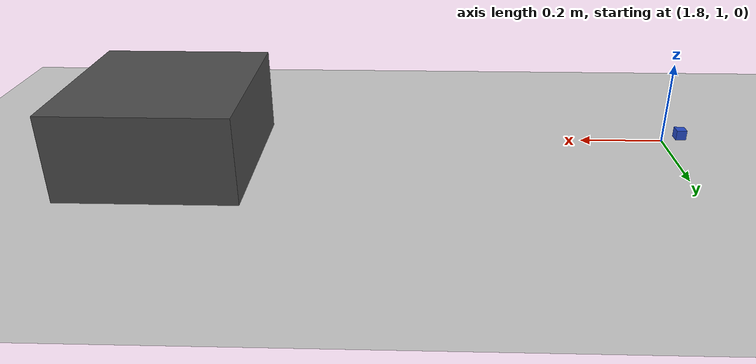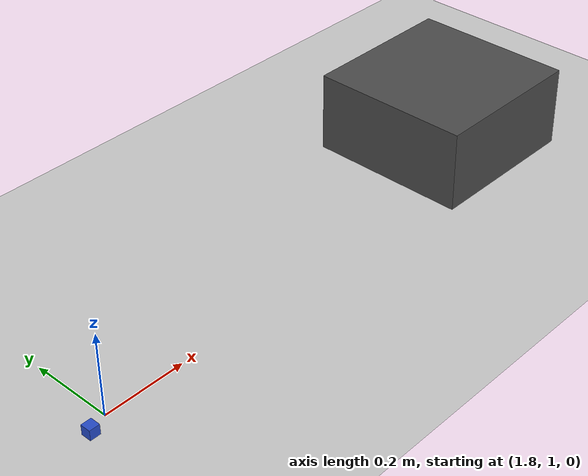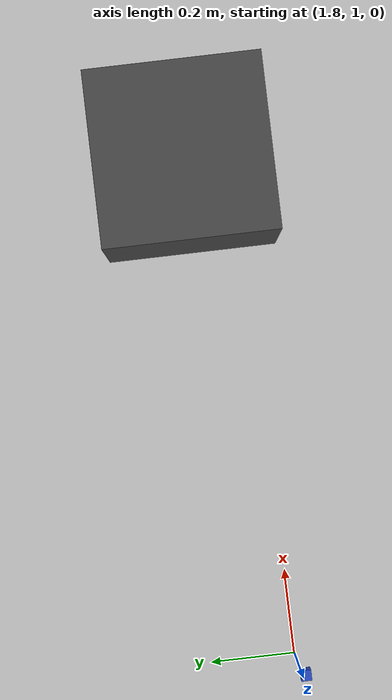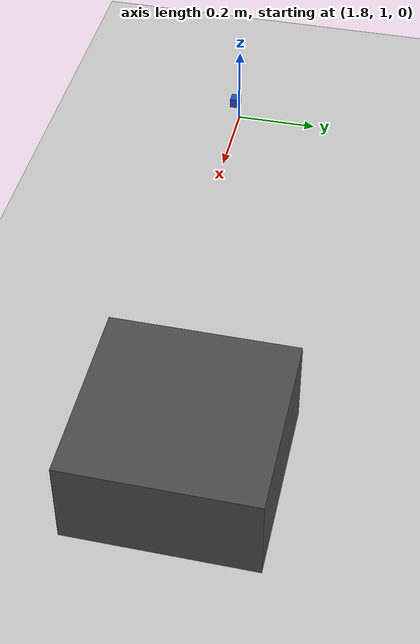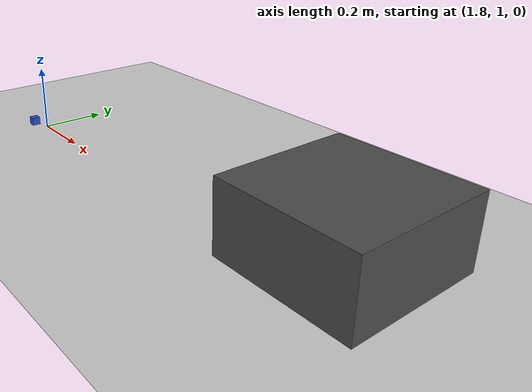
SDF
<?xml version="1.0" ?>
<sdf version="1.6">
  <world name="default">
    <include>
      <uri>model://sun</uri>
    </include>
    <include>
      <uri>model://ground_plane</uri>
    </include>

    <!-- 静态工作台：与 myam_grasping 一致，顶面 z=0.20 m -->
    <model name="grasp_table">
      <static>true</static>
      <pose>2.98 1.13 0.10 0 0 0</pose>
      <link name="table_link">
        <inertial>
          <mass>5.0</mass>
          <inertia>
            <ixx>0.05</ixx>
            <ixy>0</ixy>
            <ixz>0</ixz>
            <iyy>0.05</iyy>
            <iyz>0</iyz>
            <izz>0.05</izz>
          </inertia>
        </inertial>
        <collision name="collision">
          <geometry>
            <box>
              <size>0.40 0.40 0.20</size>
            </box>
          </geometry>
          <surface>
            <contact>
              <ode>
                <kp>3.5e4</kp>
                <kd>8</kd>
              </ode>
            </contact>
            <friction>
              <ode>
                <mu>1.2</mu>
                <mu2>1.2</mu2>
              </ode>
            </friction>
          </surface>
        </collision>
        <visual name="visual">
          <geometry>
            <box>
              <size>0.40 0.40 0.20</size>
            </box>
          </geometry>
          <material>
            <script>
              <name>Gazebo/DarkGrey</name>
              <uri>file://media/materials/scripts/gazebo.material</uri>
            </script>
          </material>
        </visual>
        <sensor name="table_contact_bumper" type="contact">
          <always_on>true</always_on>
          <update_rate>30</update_rate>
          <visualize>false</visualize>
          <contact>
            <collision>collision</collision>
          </contact>
          <plugin name="gazebo_ros_table_bumper" filename="libgazebo_ros_bumper.so">
            <alwaysOn>true</alwaysOn>
            <updateRate>30</updateRate>
            <bumperTopicName>grasp_table_contact_bumper</bumperTopicName>
            <frameName>table_link</frameName>
          </plugin>
        </sensor>
      </link>
    </model>

    <!-- 桌上不再放块（可省略）；放置阶段脚本在桌面上方开爪让块落下 -->

    <!-- 地面 2.5cm 蓝块：在默认生成机前方约 0.7 m 附近 -->
    <model name="grasp_ground_cube">
      <pose>1.75 0.98 0.0125 0 0 0</pose>
      <link name="cube_link">
        <inertial>
          <mass>0.04</mass>
          <inertia>
            <ixx>4.17e-06</ixx>
            <ixy>0</ixy>
            <ixz>0</ixz>
            <iyy>4.17e-06</iyy>
            <iyz>0</iyz>
            <izz>4.17e-06</izz>
          </inertia>
        </inertial>
        <collision name="collision">
          <geometry>
            <box>
              <size>0.025 0.025 0.025</size>
            </box>
          </geometry>
          <surface>
            <contact>
              <ode>
                <kp>5500</kp>
                <kd>48</kd>
                <max_vel>2.5</max_vel>
                <min_depth>0.001</min_depth>
              </ode>
            </contact>
            <friction>
              <ode>
                <mu>0.95</mu>
                <mu2>0.95</mu2>
              </ode>
            </friction>
          </surface>
        </collision>
        <visual name="visual">
          <geometry>
            <box>
              <size>0.025 0.025 0.025</size>
            </box>
          </geometry>
          <material>
            <script>
              <name>Gazebo/Blue</name>
              <uri>file://media/materials/scripts/gazebo.material</uri>
            </script>
          </material>
        </visual>
        <sensor name="ground_cube_bumper" type="contact">
          <always_on>true</always_on>
          <update_rate>30</update_rate>
          <visualize>false</visualize>
          <contact>
            <collision>collision</collision>
          </contact>
          <plugin name="gazebo_ros_ground_cube_bumper" filename="libgazebo_ros_bumper.so">
            <alwaysOn>true</alwaysOn>
            <updateRate>30</updateRate>
            <bumperTopicName>grasp_ground_cube_contact_bumper</bumperTopicName>
            <frameName>cube_link</frameName>
          </plugin>
        </sensor>
      </link>
    </model>

    <physics name="default_physics" type="ode">
      <max_step_size>0.005</max_step_size>
      <real_time_update_rate>200</real_time_update_rate>
      <ode>
        <solver>
          <type>quick</type>
          <iters>20</iters>
          <sor>1.3</sor>
        </solver>
        <constraints>
          <cfm>0.001</cfm>
          <erp>0.2</erp>
          <contact_max_correcting_vel>80</contact_max_correcting_vel>
          <contact_surface_layer>0.002</contact_surface_layer>
        </constraints>
      </ode>
      <magnetic_field>6.0e-6 2.3e-5 -4.2e-5</magnetic_field>
    </physics>
  </world>
</sdf>
